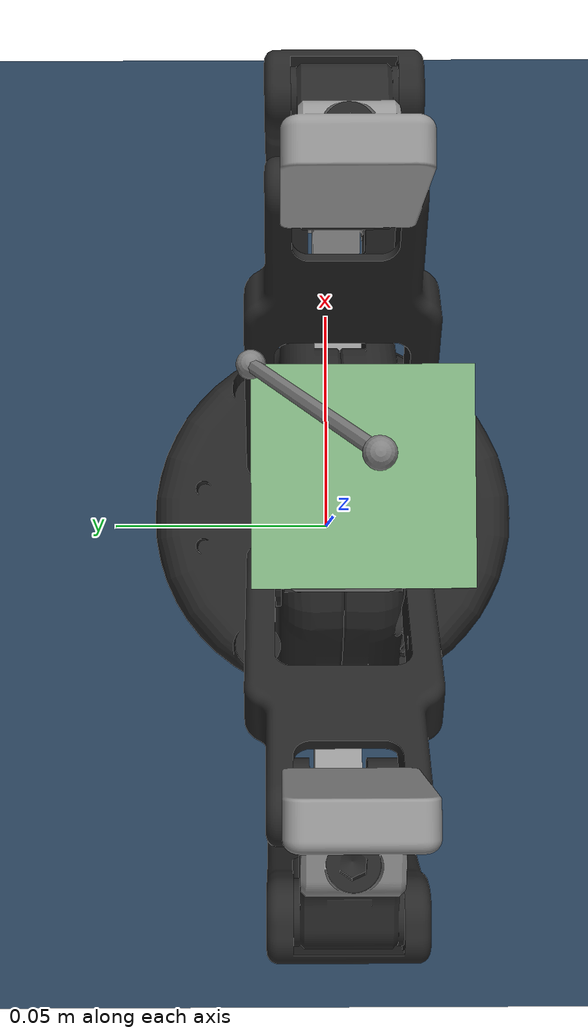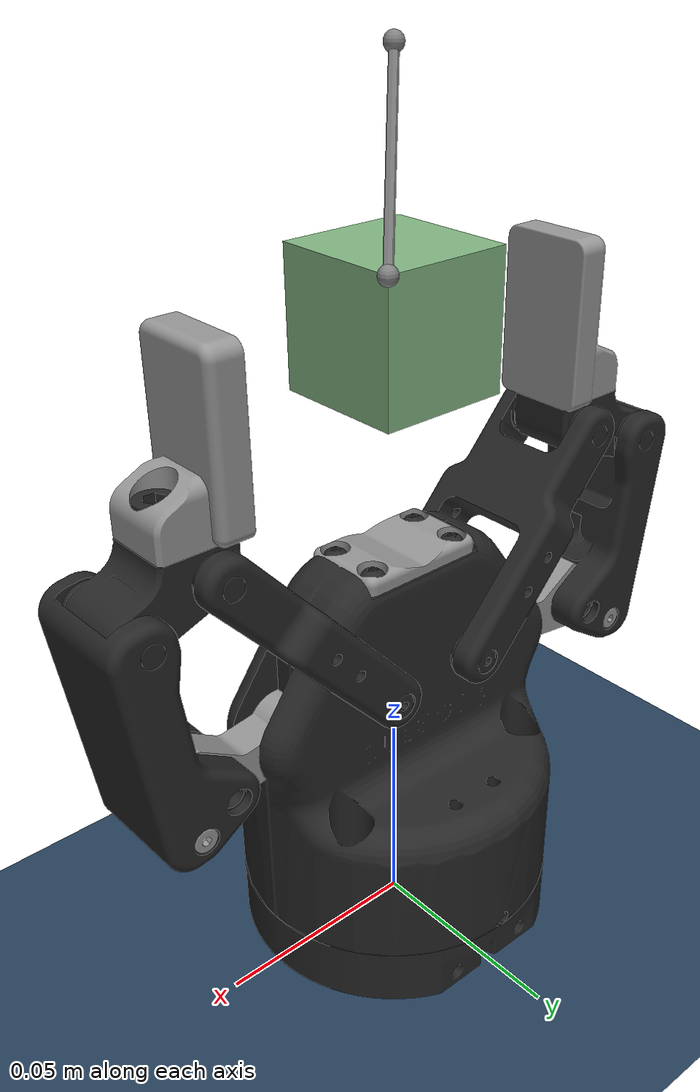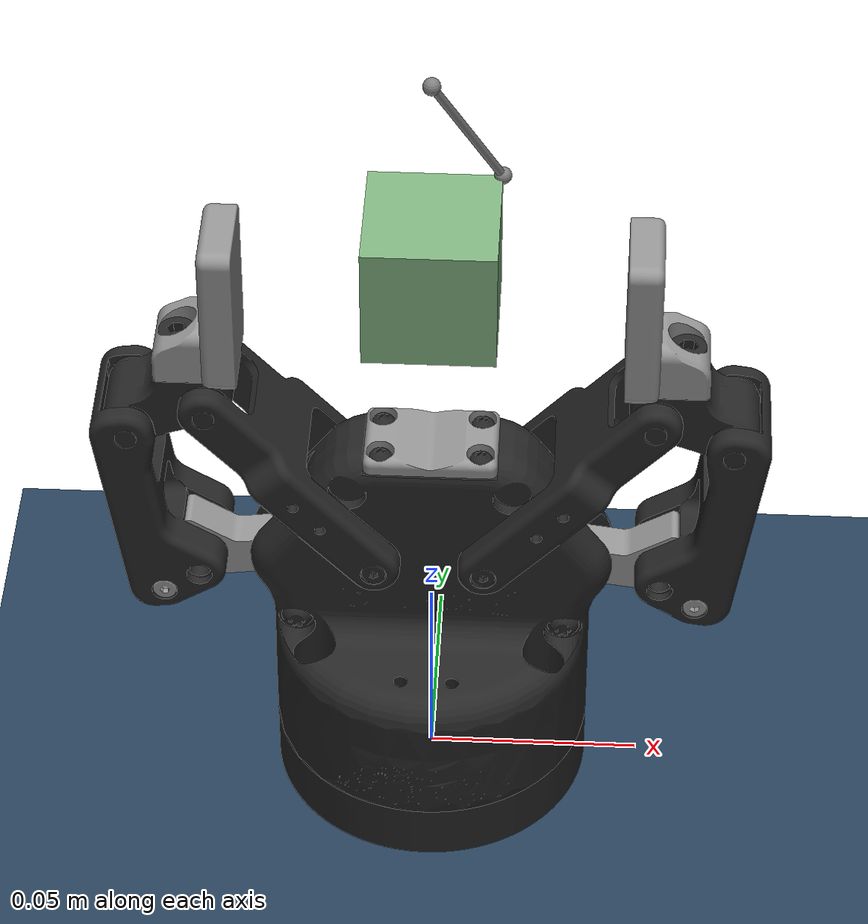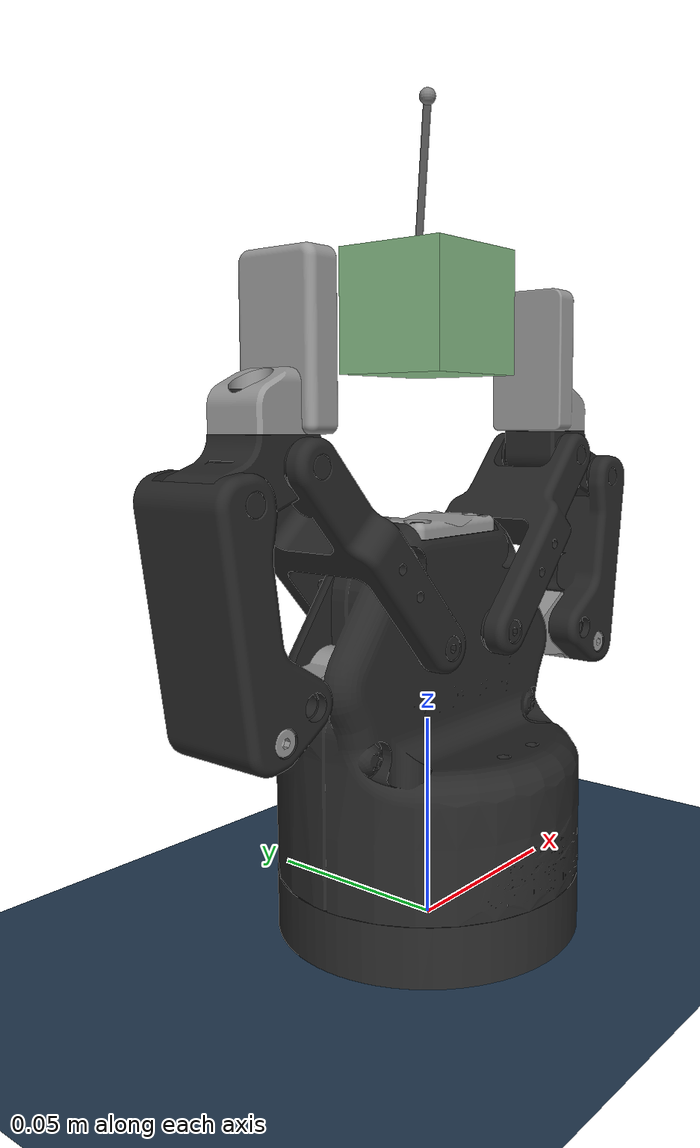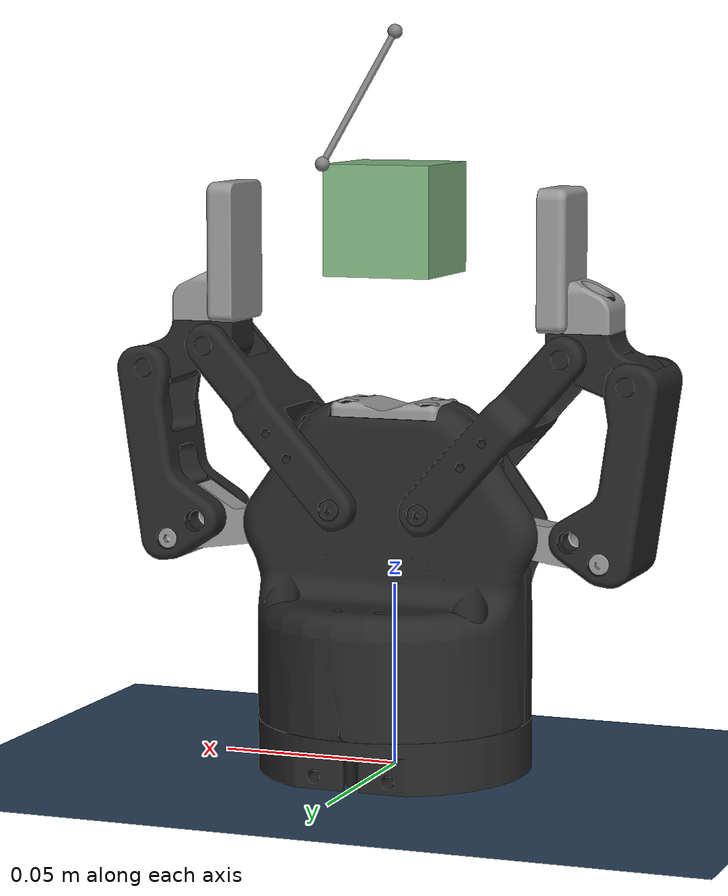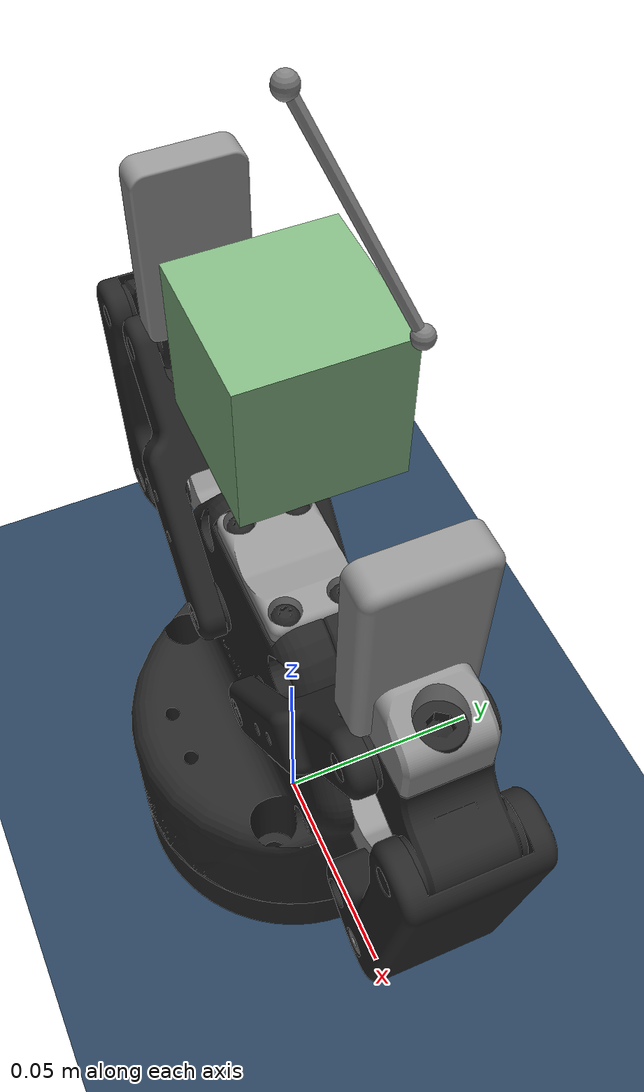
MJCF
<mujoco model="2f85 scene">
  <include file="2f85.xml"/>

  <!-- Add some fluid viscosity to prevent the hanging box from jiggling forever -->
  <option viscosity="0.1"/>

  <visual>
    <headlight diffuse="0.6 0.6 0.6" ambient="0.3 0.3 0.3" specular="0 0 0"/>
    <rgba haze="0.15 0.25 0.35 1"/>
    <global azimuth="60" elevation="-20"/>
  </visual>

  <asset>
    <texture type="skybox" builtin="gradient" rgb1="0.3 0.5 0.7" rgb2="0 0 0" width="512" height="3072"/>
    <texture type="2d" name="groundplane" builtin="checker" mark="edge" rgb1="0.2 0.3 0.4" rgb2="0.1 0.2 0.3"
      markrgb="0.8 0.8 0.8" width="300" height="300"/>
    <material name="groundplane" texture="groundplane" texuniform="true" texrepeat="5 5" reflectance="0.2"/>
  </asset>

  <worldbody>
    <light pos="0 0 1"/>
    <light pos="0 -0.2 1" dir="0 0.2 -0.8" directional="true"/>
    <geom name="floor" size="0 0 0.05" type="plane" material="groundplane"/>
    <site size="0.002" pos="0 0 0.2" name="anchor"/>
    <body name="object" pos="0 0 0.15">
      <freejoint/>
      <geom type="box" size="0.015 0.015 0.015" rgba=".5 .7 .5 1" friction=".5" priority="1"/>
      <site size="0.002" pos="0.015 0.015 0.015" name="hook"/>
    </body>
  </worldbody>

  <tendon>
    <spatial limited="true" range="0 0.02" width="0.001">
      <site site="hook"/>
      <site site="anchor"/>
    </spatial>
  </tendon>
</mujoco>

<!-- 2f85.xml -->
<mujoco model="Dual_wrist_camera">
  <compiler angle="radian" meshdir="assets" autolimits="true"/>

  <option cone="elliptic" impratio="10"/>

  <asset>

    <material name="metal" rgba="0.58 0.58 0.58 1"/>
    <material name="silicone" rgba="0.1882 0.1882 0.1882 1"/>
    <material name="black" rgba="0.149 0.149 0.149 1"/>

    <mesh file="base.stl"/>
    <mesh file="base_coupling.stl"/>
    <mesh file="c-a01-85-open.stl"/>
    <mesh file="driver.stl"/>
    <mesh file="coupler.stl"/>
    <mesh file="spring_link.stl"/>
    <mesh file="follower.stl"/>
    <mesh file="tongue.stl"/>
  </asset>

  <default>
    <default class="2f85">
      <mesh scale="0.001 0.001 0.001"/>
      <general biastype="affine"/>

      <joint axis="0 0 1"/>
      <default class="driver">
        <joint range="0 0.9" armature="0.005" damping="0.1" solimplimit="0.95 0.99 0.001" solreflimit="0.005 1"/>
      </default>
      <default class="follower">
        <joint range="-0.872664 0.9" armature="0.001" solimplimit="0.95 0.99 0.001" solreflimit="0.005 1"/>
      </default>
      <default class="spring_link">
        <joint range="-0.29670597283 0.9" armature="0.001" stiffness="0.05" springref="2.62" damping="0.00125"/>
      </default>
      <default class="coupler">
        <joint range="-1.57 0" armature="0.001" solimplimit="0.95 0.99 0.001" solreflimit="0.005 1"/>
      </default>

      <default class="visual">
        <geom type="mesh" contype="0" conaffinity="0" group="2" material="black"/>
      </default>
      <default class="collision">
        <geom type="mesh" group="3"/>
        <default class="pad_box1">
          <geom mass="0.00175" type="box" pos="0.043258 0 0.12" size="0.002 0.011 0.009375" friction="0.7"
            solimp="0.95 0.99 0.001" solref="0.004 1" priority="1" rgba="0.55 0.55 0.55 1"/>
        </default>
        <default class="pad_box2">
          <geom mass="0.00175" type="box" pos="0.043258 0 0.13875" size="0.002 0.011 0.009375" friction="0.6"
            solimp="0.95 0.99 0.001" solref="0.004 1" priority="1" rgba="0.45 0.45 0.45 1"/>
        </default>
      </default>
    </default>
  </default>

  <worldbody>
    <body name="base" childclass="2f85">
      <inertial mass="0.777441" pos="7.77116e-05 8.42713e-05 0.0311656" quat="0.704758 -0.00373684 -0.00570287 0.709415"
        diaginertia="0.000260285 0.000225381 0.000152708"/>
      <geom class="visual" pos="0 0 0.0108" quat="0 0 0 1" mesh="base"/>
      <geom class="visual" pos="0 0 0.004" quat="1 -1 0 0" mesh="base_coupling"/>
      <geom class="visual" pos="0 0 0.0108" quat="1 0 0 0" material="metal" mesh="c-a01-85-open"/>
      <geom class="collision" pos="0 0 0.0108" quat="0 0 0 1" mesh="base"/>
      <!-- Left-hand side 4-bar linkage -->
      <body name="left_driver" pos="-0.0306011 0.00475 0.0657045" quat="1 -1 0 0">
        <inertial mass="0.00899563" pos="-0.0175297 0.00165308 -0.00469625" quat="-0.469642 0.469642 -0.528617 0.528617"
          diaginertia="1.72352e-06 1.60906e-06 3.22006e-07"/>
        <joint name="left_driver_joint" class="driver"/>
        <geom class="visual" pos="0.0306011 0.0549045 -0.0047" quat="1 1 0 0" material="metal" mesh="driver"/>
        <geom class="collision" pos="0.0306011 0.0549045 -0.0047" quat="1 1 0 0" mesh="driver"/>
        <body name="left_coupler" pos="-0.0314249 0.00453223 -0.0102" quat="0 0 0 1">
          <inertial mass="0.0140974" pos="0.00367747 0.01986 0.0055" quat="0.701447 -0.701447 0.0892884 -0.0892884"
            diaginertia="4.16206e-06 3.52216e-06 8.88131e-07"/>
          <geom class="visual" pos="-0.062026 -0.0503723 0.0055" quat="1 -1 0 0" mesh="coupler"/>
          <geom class="collision" pos="-0.062026 -0.0503723 0.0055" quat="1 -1 0 0" mesh="coupler"/>
        </body>
      </body>
      <body name="left_spring_link" pos="-0.0127 -0.012 0.07222" quat="1 -1 0 0">
        <inertial mass="0.0221642" pos="-0.0183 -0.0205732 0.01205" quat="0.660941 0.660941 -0.251309 -0.251309"
          diaginertia="8.96853e-06 6.71733e-06 2.63931e-06"/>
        <joint name="left_spring_link_joint" class="spring_link"/>
        <geom class="visual" pos="0.0127 0.06142 0.01205" quat="1 1 0 0" type="mesh" mesh="spring_link"/>
        <geom class="collision" pos="0.0127 0.06142 0.01205" quat="1 1 0 0" type="mesh" mesh="spring_link"/>
        <body name="left_follower" pos="-0.0382079 -0.0425003 0.00295" quat="0 -1 -1.90231e-05 0">
          <inertial mass="0.0125222" pos="-0.00852976 -0.0014822 -0.00910001" quat="0.359439 0.359439 0.608937 0.608937"
            diaginertia="2.67415e-06 2.4559e-06 6.02031e-07"/>
          <joint name="left_follower" class="follower"/>
          <geom class="visual" pos="0.0509079 -0.10392 -0.0091" quat="1 -1 0 0" type="mesh" mesh="follower"/>
          <geom class="visual" pos="0.0509079 -0.10392 -0.0091" quat="1 -1 0 0" type="mesh" material="metal"
            mesh="tongue"/>
          <geom class="collision" pos="0.0509079 -0.10392 -0.0091" quat="1 -1 0 0" type="mesh" mesh="follower"/>
          <geom class="collision" pos="0.0509079 -0.10392 -0.0091" quat="1 -1 0 0" type="mesh" mesh="tongue"/>
          <body name="left_pad" pos="-0.0377897 -0.103916 -0.0091" quat="1 -1 0 0">
            <geom class="pad_box1" name="left_pad1"/>
            <geom class="pad_box2" name="left_pad2"/>
          </body>
        </body>
      </body>
      <!-- Right-hand side 4-bar linkage -->
      <body name="right_driver" pos="0.0306011 -0.00475 0.0657045" quat="0 0 -1 1">
        <inertial mass="0.00899563" pos="-0.0175297 0.00165308 -0.00469625" quat="-0.469642 0.469642 -0.528617 0.528617"
          diaginertia="1.72352e-06 1.60906e-06 3.22006e-07"/>
        <joint name="right_driver_joint" class="driver"/>
        <geom class="visual" pos="0.0306011 0.0549045 -0.0047" quat="1 1 0 0" material="metal" mesh="driver"/>
        <geom class="collision" pos="0.0306011 0.0549045 -0.0047" quat="1 1 0 0" mesh="driver"/>
        <body name="right_coupler" pos="-0.0314249 0.00453223 -0.0102" quat="0 0 0 1">
          <inertial mass="0.0140974" pos="0.00367747 0.01986 0.0055" quat="0.701447 -0.701447 0.0892884 -0.0892884"
            diaginertia="4.16206e-06 3.52216e-06 8.88131e-07"/>
          <geom class="visual" pos="-0.062026 -0.0503723 0.0055" quat="1 -1 0 0" mesh="coupler"/>
          <geom class="collision" pos="-0.062026 -0.0503723 0.0055" quat="1 -1 0 0" mesh="coupler"/>
        </body>
      </body>
      <body name="right_spring_link" pos="0.0127 0.012 0.07222" quat="0 0 -1 1">
        <inertial mass="0.0221642" pos="-0.0183 -0.0205732 0.01205" quat="0.660941 0.660941 -0.251309 -0.251309"
          diaginertia="8.96853e-06 6.71733e-06 2.63931e-06"/>
        <joint name="right_spring_link_joint" class="spring_link"/>
        <geom class="visual" pos="0.0127 0.06142 0.01205" quat="1 1 0 0" mesh="spring_link"/>
        <geom class="collision" pos="0.0127 0.06142 0.01205" quat="1 1 0 0" mesh="spring_link"/>
        <body name="right_follower" pos="-0.0382079 -0.0425003 0.00295" quat="0 -1 0 0">
          <inertial mass="0.0125222" pos="-0.00852976 -0.0014822 -0.00910001" quat="0.359439 0.359439 0.608937 0.608937"
            diaginertia="2.67415e-06 2.4559e-06 6.02031e-07"/>
          <joint name="right_follower_joint" class="follower"/>
          <geom class="visual" pos="0.0509079 -0.10392 -0.0091" quat="1 -1 0 0" material="metal" mesh="tongue"/>
          <geom class="visual" pos="0.0509079 -0.10392 -0.0091" quat="1 -1 0 0" mesh="follower"/>
          <geom class="collision" pos="0.0509079 -0.10392 -0.0091" quat="1 -1 0 0" mesh="tongue"/>
          <geom class="collision" pos="0.0509079 -0.10392 -0.0091" quat="1 -1 0 0" mesh="follower"/>
          <body name="right_pad" pos="-0.0377897 -0.103916 -0.0091" quat="1 -1 0 0">
            <geom class="pad_box1" name="right_pad1"/>
            <geom class="pad_box2" name="right_pad2"/>
          </body>
        </body>
      </body>
    </body>
  </worldbody>

  <contact>
    <exclude body1="base" body2="left_driver"/>
    <exclude body1="base" body2="right_driver"/>
    <exclude body1="base" body2="left_spring_link"/>
    <exclude body1="base" body2="right_spring_link"/>
    <exclude body1="right_coupler" body2="right_follower"/>
    <exclude body1="left_coupler" body2="left_follower"/>
  </contact>

  <tendon>
    <fixed name="split">
      <joint joint="right_driver_joint" coef="0.485"/>
      <joint joint="left_driver_joint" coef="0.485"/>
    </fixed>
  </tendon>

  <equality>
    <connect anchor="-0.0179014 -0.00651468 0.0044" body1="right_follower" body2="right_coupler"
      solimp="0.95 0.99 0.001" solref="0.005 1"/>
    <connect anchor="-0.0179014 -0.00651468 0.0044" body1="left_follower" body2="left_coupler" solimp="0.95 0.99 0.001"
      solref="0.005 1"/>
    <joint joint1="right_driver_joint" joint2="left_driver_joint" polycoef="0 1 0 0 0" solimp="0.95 0.99 0.001"
      solref="0.005 1"/>
  </equality>

  <actuator>
    <general class="2f85" name="fingers_actuator" tendon="split" forcerange="-5 5" ctrlrange="0 255"
      gainprm="0.3137255 0 0" biasprm="0 -100 -10"/>
  </actuator>
</mujoco>
